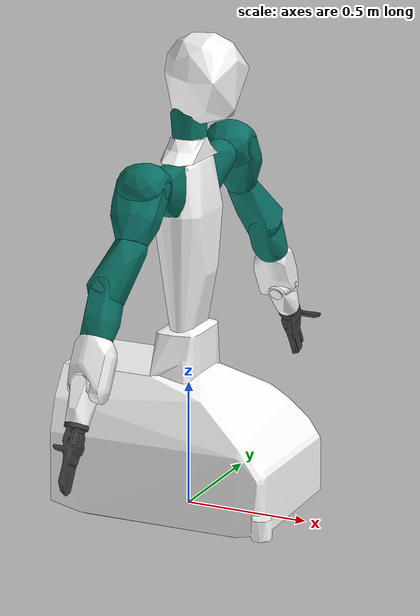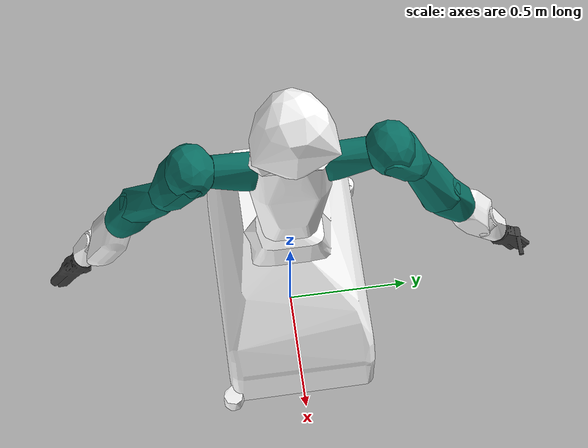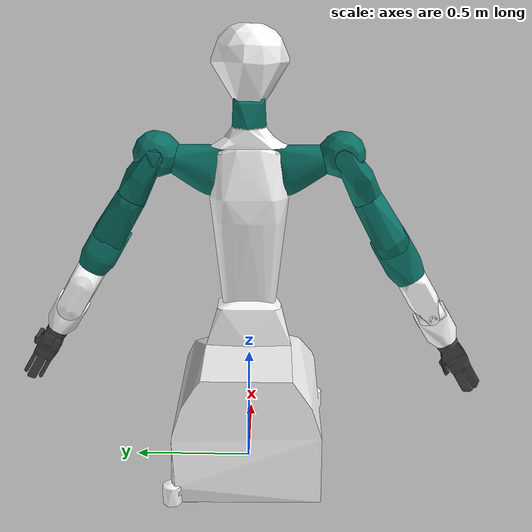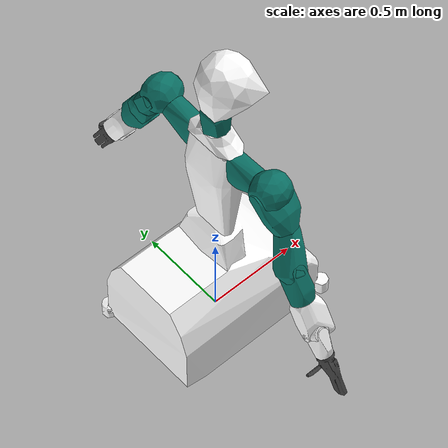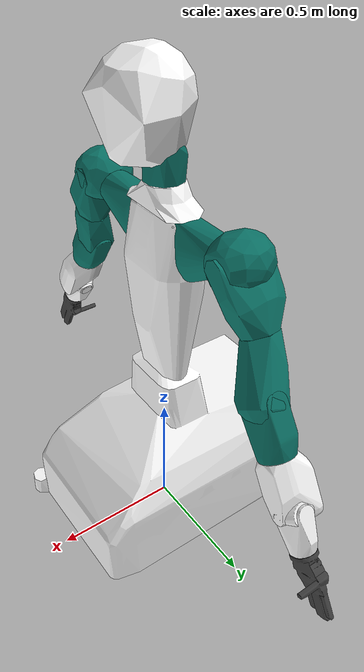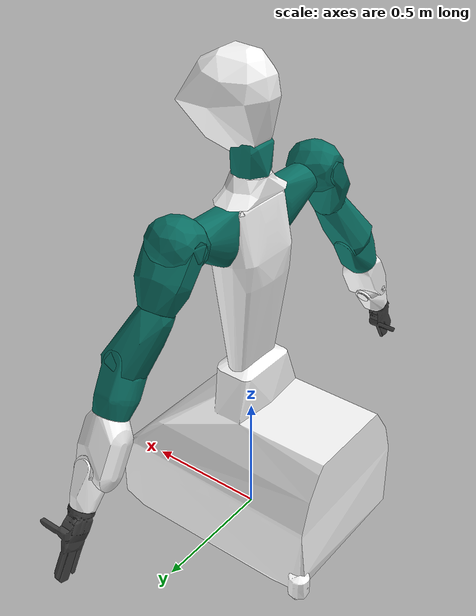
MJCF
<mujoco model="armar6">
    <compiler angle="radian" autolimits="true"/>
    <default/>
    <asset>
        <mesh name="platform" file="armar6/stl/platform.stl"/>
        <mesh name="torso" file="armar6/stl/torso.stl"/>
        <mesh name="lower_neck" file="armar6/stl/lower_neck.stl"/>
        <mesh name="middle_neck" file="armar6/stl/middle_neck.stl"/>
        <mesh name="upper_neck" file="armar6/stl/upper_neck.stl"/>
        <mesh name="arml_cla" file="armar6/stl/arml_cla.stl"/>
        <mesh name="arml_t12" file="armar6/stl/arml_t12.stl"/>
        <mesh name="arml_t23" file="armar6/stl/arml_t23.stl"/>
        <mesh name="arml_t34" file="armar6/stl/arml_t34.stl"/>
        <mesh name="arml_t45" file="armar6/stl/arml_t45.stl"/>
        <mesh name="arml_t56" file="armar6/stl/arml_t56.stl"/>
        <mesh name="arml_t67" file="armar6/stl/arml_t67.stl"/>
        <mesh name="arml_t78" file="armar6/stl/arml_t78.stl"/>
        <mesh name="arml_t8" file="armar6/stl/arml_t8.stl"/>
        <mesh name="left_hand_fixed" file="armar6/stl/left_hand_fixed.stl"/>
        <mesh name="right_hand_fixed" file="armar6/stl/right_hand_fixed.stl"/>
    </asset>
    <worldbody>
        <body name="armar6" >
            <freejoint />
            <geom quat="0.707107 0 0 -0.707107" type="mesh" rgba="1 1 1 1" mesh="platform"/>
            <body name="torso" pos="0 0 1.195" quat="0.707107 0 0 -0.707107" gravcomp="0">
                <inertial pos="0 0 0.0857093" quat="0.707127 1.453e-05 4.25075e-06 0.707087" mass="12.3799" diaginertia="0.156754 0.139381 0.132809"/>
                <joint name="torso_joint" pos="0 0 0" axis="0 0 1" type="slide" range="-0.365 0" damping="0.5"/>
                <geom type="mesh" rgba="1 1 1 1" mesh="torso"/>
                <geom pos="0 0 0.3685" quat="0.707107 0 0 0.707107" type="mesh" rgba="1 1 1 1" mesh="lower_neck"/>
                <geom pos="-0.09 0 0.1" quat="0.707107 0 0 0.707107" type="mesh" rgba="1 1 1 1" mesh="arml_cla"/>
                <geom pos="0.09 0 0.1" quat="0.707107 0 0 -0.707107" type="mesh" rgba="1 1 1 1" mesh="arml_cla"/>
                <body name="middle_neck" pos="0 0 0.3685" quat="0.707107 0 0 0.707107" gravcomp="0">
                    <inertial pos="0 0 0" quat="0.344321 0.618307 -0.342768 0.617778" mass="0.304" diaginertia="0.00109402 0.000881954 0.000718409"/>
                    <joint name="middle_neck_joint" pos="0 0 0" axis="0 0 1" range="-0.785398 0.785398"/>
                    <geom type="mesh" rgba="0.0392157 0.447059 0.4 1" mesh="middle_neck"/>
                    <body name="upper_neck" pos="0 0 0" quat="0.5 0.5 0.5 0.5" gravcomp="0">
                        <inertial pos="0 0.129 0.088" quat="0.44131 0.598571 -0.535904 0.399706" mass="3.307" diaginertia="0.0282836 0.0282836 0.0282836"/>
                        <joint name="upper_neck_joint" pos="0 0 0" axis="1 0 0" range="-0.785398 0.785398"/>
                        <geom type="mesh" rgba="1 1 1 1" mesh="upper_neck"/>
                    </body>
                </body>
                <body name="arm_t12_r0" pos="-0.09 0 0.1" quat="0.707107 0 0 0.707107" gravcomp="0">
                    <inertial pos="0 0.1419 0.0283" quat="0.977472 -0.210468 -0.0136787 -0.00802018" mass="3.5488" diaginertia="0.0183891 0.015228 0.00978586"/>
                    <joint name="arm_t12_joint_r0" pos="0 0 0" axis="0 0 1" range="-1.39626 1.39626" damping="0.5"/>
                    <geom type="mesh" rgba="0.0392157 0.447059 0.4 1" mesh="arml_t12"/>
                    <body name="arm_t23_r0" pos="0 0.289778 0.0776457" quat="0.793353 -0.608761 0 0" gravcomp="0">
                        <inertial pos="0.00015 -0.0036 0.0211" quat="-0.097078 0.700593 -0.0934397 0.700724" mass="3.03804" diaginertia="0.013153 0.0129431 0.00940091"/>
                        <joint name="arm_t23_joint_r0" pos="0 0 0" axis="0 0 1" damping="0.5"/>
                        <geom type="mesh" rgba="0.0392157 0.447059 0.4 1" mesh="arml_t23"/>
                        <body name="arm_t34_r0" pos="0 0 0" quat="0.701057 0.092296 0.701057 0.092296" gravcomp="0">
                            <inertial pos="-0.01285 0.11 0.00467" quat="0.993781 0.0859292 -0.0618007 0.0345924" mass="3.46206" diaginertia="0.0153298 0.0118422 0.00926601"/>
                            <joint name="arm_t34_joint_r0" pos="0 0 0" axis="0 0 1" range="-0.24 3.1" damping="0.5"/>
                            <geom type="mesh" rgba="0.0392157 0.447059 0.4 1" mesh="arml_t34"/>
                            <body name="arm_t45_r0" pos="0 0 0" quat="0.707107 -0.707107 0 0" gravcomp="0">
                                <inertial pos="0.0163 -0.0332 0.315" quat="0.575745 0.399618 -0.341861 0.626062" mass="3.31477" diaginertia="0.0197874 0.0187322 0.00964545"/>
                                <joint name="arm_t45_joint_r0" pos="0 0 0" axis="0 0 1" damping="0.5"/>
                                <geom type="mesh" rgba="0.0392157 0.447059 0.4 1" mesh="arml_t45"/>
                                <body name="arm_t56_r0" pos="0 -0.055 0.409" quat="0.707107 0 0.707107 0" gravcomp="0">
                                    <inertial pos="-0.09107 0.00476 -0.00899" quat="0.0686621 0.715794 -0.0603954 0.692298" mass="2.63888" diaginertia="0.0113023 0.00955045 0.00747825"/>
                                    <joint name="arm_t56_joint_r0" pos="0 0 0" axis="0 0 1" range="0 2.51" damping="0.5"/>
                                    <geom type="mesh" rgba="0.0392157 0.447059 0.4 1" mesh="arml_t56"/>
                                    <body name="arm_t67_r0" pos="0 0 0" quat="0.707107 0 -0.707107 0" gravcomp="0">
                                        <inertial pos="0.00107 0.01939 0.25303" quat="0.509435 0.860337 -0.00835149 0.0150646" mass="2.71787" diaginertia="0.0118569 0.0105067 0.00613933"/>
                                        <joint name="arm_t67_joint_r0" pos="0 0 0" axis="0 0 1" damping="0.5"/>
                                        <geom type="mesh" rgba="1 1 1 1" mesh="arml_t67"/>
                                        <body name="arm_t78_r0" pos="0 0 0.364" quat="0.707107 0.707107 0 0" gravcomp="0">
                                            <inertial pos="-0.00657 -0.00467 0.01181" quat="0.0134359 0.699389 -0.0109214 0.714531" mass="1.62346" diaginertia="0.00239239 0.00195948 0.00155113"/>
                                            <joint name="arm_t78_joint_r0" pos="0 0 0" axis="0 0 1" range="-0.64 0.64" damping="0.5"/>
                                            <geom type="mesh" rgba="1 1 1 1" mesh="arml_t78"/>
                                            <body name="arm_t8_r0" pos="0 0 0" quat="0.5 -0.5 0.5 0.5" gravcomp="0">
                                                <inertial pos="-0.00874416 0.00931379 0.188745" quat="0.993294 0.0648778 0.00406993 0.0956135" mass="1.51384" diaginertia="0.0171241 0.0170171 0.00448581"/>
                                                <joint name="arm_t8_joint_r0" pos="0 0 0" axis="0 -1 0" range="-1.52 1.52" damping="0.5"/>
                                                <geom type="mesh" rgba="1 1 1 1" mesh="arml_t8"/>
                                                <geom pos="-0.022 0 0.2645" type="mesh" rgba="0.251 0.251 0.251 1" mesh="left_hand_fixed"/>
                                            </body>
                                        </body>
                                    </body>
                                </body>
                            </body>
                        </body>
                    </body>
                </body>
                <body name="arm_t12_r1" pos="0.09 0 0.1" quat="0.707107 0 0 -0.707107" gravcomp="0">
                    <inertial pos="0 0.1419 0.0283" quat="0.977472 -0.210468 -0.0136787 -0.00802018" mass="3.5488" diaginertia="0.0183891 0.015228 0.00978586"/>
                    <joint name="arm_t12_joint_r1" pos="0 0 0" axis="0 0 1" range="-1.39626 1.39626" damping="0.5"/>
                    <geom type="mesh" rgba="0.0392157 0.447059 0.4 1" mesh="arml_t12"/>
                    <body name="arm_t23_r1" pos="0 0.289778 0.0776457" quat="0.793353 -0.608761 0 0" gravcomp="0">
                        <inertial pos="0.00015 -0.0036 0.0211" quat="-0.097078 0.700593 -0.0934397 0.700724" mass="3.03804" diaginertia="0.013153 0.0129431 0.00940091"/>
                        <joint name="arm_t23_joint_r1" pos="0 0 0" axis="0 0 1" damping="0.5"/>
                        <geom type="mesh" rgba="0.0392157 0.447059 0.4 1" mesh="arml_t23"/>
                        <body name="arm_t34_r1" pos="0 0 0" quat="0.701057 0.092296 0.701057 0.092296" gravcomp="0">
                            <inertial pos="-0.01285 0.11 0.00467" quat="0.993781 0.0859292 -0.0618007 0.0345924" mass="3.46206" diaginertia="0.0153298 0.0118422 0.00926601"/>
                            <joint name="arm_t34_joint_r1" pos="0 0 0" axis="0 0 1" range="-0.24 3.1" damping="0.5"/>
                            <geom type="mesh" rgba="0.0392157 0.447059 0.4 1" mesh="arml_t34"/>
                            <body name="arm_t45_r1" pos="0 0 0" quat="0.707107 -0.707107 0 0" gravcomp="0">
                                <inertial pos="0.0163 -0.0332 0.315" quat="0.575745 0.399618 -0.341861 0.626062" mass="3.31477" diaginertia="0.0197874 0.0187322 0.00964545"/>
                                <joint name="arm_t45_joint_r1" pos="0 0 0" axis="0 0 1" damping="0.5"/>
                                <geom type="mesh" rgba="0.0392157 0.447059 0.4 1" mesh="arml_t45"/>
                                <body name="arm_t56_r1" pos="0 -0.055 0.409" quat="0.707107 0 0.707107 0" gravcomp="0">
                                    <inertial pos="-0.09107 0.00476 -0.00899" quat="0.0686621 0.715794 -0.0603954 0.692298" mass="2.63888" diaginertia="0.0113023 0.00955045 0.00747825"/>
                                    <joint name="arm_t56_joint_r1" pos="0 0 0" axis="0 0 1" range="0 2.51" damping="0.5"/>
                                    <geom type="mesh" rgba="0.0392157 0.447059 0.4 1" mesh="arml_t56"/>
                                    <body name="arm_t67_r1" pos="0 0 0" quat="0.707107 0 -0.707107 0" gravcomp="0">
                                        <inertial pos="0.00107 0.01939 0.25303" quat="0.509435 0.860337 -0.00835149 0.0150646" mass="2.71787" diaginertia="0.0118569 0.0105067 0.00613933"/>
                                        <joint name="arm_t67_joint_r1" pos="0 0 0" axis="0 0 1" damping="0.5"/>
                                        <geom type="mesh" rgba="1 1 1 1" mesh="arml_t67"/>
                                        <body name="arm_t78_r1" pos="0 0 0.364" quat="0.707107 0.707107 0 0" gravcomp="0">
                                            <inertial pos="-0.00657 -0.00467 0.01181" quat="0.0134359 0.699389 -0.0109214 0.714531" mass="1.62346" diaginertia="0.00239239 0.00195948 0.00155113"/>
                                            <joint name="arm_t78_joint_r1" pos="0 0 0" axis="0 0 1" range="-0.64 0.64" damping="0.5"/>
                                            <geom type="mesh" rgba="1 1 1 1" mesh="arml_t78"/>
                                            <body name="arm_t8_r1" pos="0 0 0" quat="0.5 -0.5 0.5 0.5" gravcomp="0">
                                                <inertial pos="-0.00874416 0.00931379 0.188745" quat="0.988473 0.0647707 0.00139168 0.136832" mass="1.51384" diaginertia="0.0171878 0.0171109 0.00453894"/>
                                                <joint name="arm_t8_joint_r1" pos="0 0 0" axis="0 -1 0" range="-1.52 1.52" damping="0.5"/>
                                                <geom type="mesh" rgba="1 1 1 1" mesh="arml_t8"/>
                                                <geom pos="-0.022 0 0.2645" type="mesh" rgba="0.251 0.251 0.251 1" mesh="right_hand_fixed"/>
                                            </body>
                                        </body>
                                    </body>
                                </body>
                            </body>
                        </body>
                    </body>
                </body>
            </body>
        </body>
    </worldbody>
    <equality/>
    <contact>
        <exclude body1="armar6" body2="torso"/>
        <exclude body1="torso" body2="middle_neck"/>
        <exclude body1="middle_neck" body2="upper_neck"/>
        <exclude body1="torso" body2="arm_t12_r0"/>
        <exclude body1="arm_t12_r0" body2="arm_t23_r0"/>
        <exclude body1="arm_t23_r0" body2="arm_t34_r0"/>
        <exclude body1="arm_t34_r0" body2="arm_t45_r0"/>
        <exclude body1="arm_t45_r0" body2="arm_t56_r0"/>
        <exclude body1="arm_t56_r0" body2="arm_t67_r0"/>
        <exclude body1="arm_t67_r0" body2="arm_t78_r0"/>
        <exclude body1="arm_t78_r0" body2="arm_t8_r0"/>
        <exclude body1="torso" body2="arm_t12_r1"/>
        <exclude body1="arm_t12_r1" body2="arm_t23_r1"/>
        <exclude body1="arm_t23_r1" body2="arm_t34_r1"/>
        <exclude body1="arm_t34_r1" body2="arm_t45_r1"/>
        <exclude body1="arm_t45_r1" body2="arm_t56_r1"/>
        <exclude body1="arm_t56_r1" body2="arm_t67_r1"/>
        <exclude body1="arm_t67_r1" body2="arm_t78_r1"/>
        <exclude body1="arm_t78_r1" body2="arm_t8_r1"/>
    </contact>
</mujoco>
